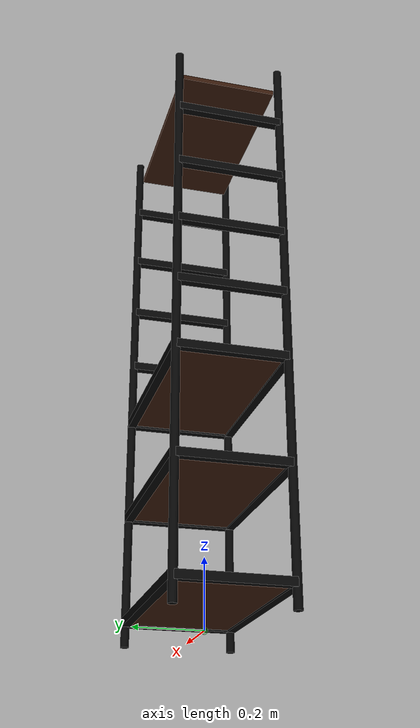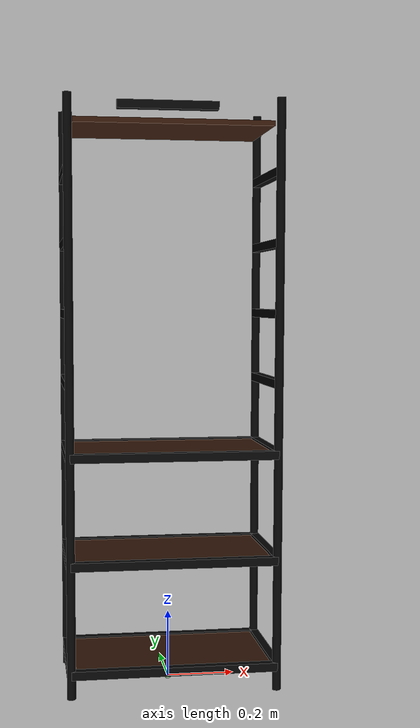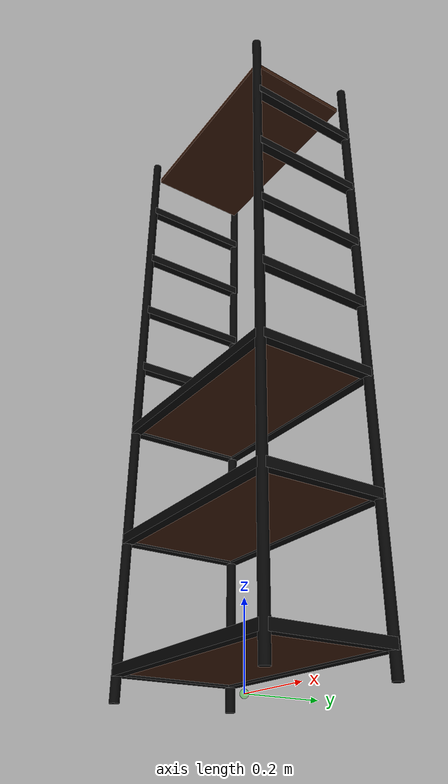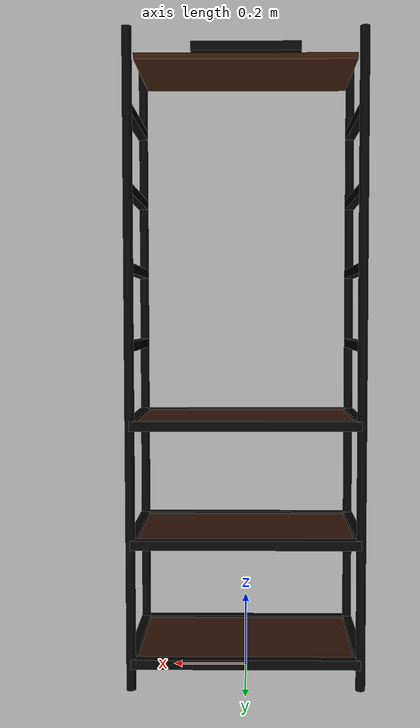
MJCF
<mujoco model="obstacle_shelf">
  <default>
    <default class="visual">
      <geom group="1" type="box" contype="0" conaffinity="0" density="100"/>
    </default>
    <default class="collision">
      <geom group="0" type="box" density="100" solimp="0.95 0.98 0.001" solref="0.004 1" rgba="1 1 1 0.25"/>
    </default>
    <default class="spawn">
      <geom group="1" rgba="1 1 1 0" contype="0" conaffinity="0" density="0" mass="0"/>
    </default>
  </default>
  <asset>
    <texture name="black_metal_tex" builtin="flat" rgb1="0.12 0.12 0.12" rgb2="0.12 0.12 0.12" width="32" height="32"/>
    <material name="black_metal_mat" texture="black_metal_tex" shininess="0.4" reflectance="0.15" rgba="0.12 0.12 0.12 1"/>
    <texture name="brown_wood_tex" builtin="flat" rgb1="0.45 0.30 0.18" rgb2="0.50 0.33 0.20" width="32" height="32"/>
    <material name="brown_wood_mat" texture="brown_wood_tex" shininess="0.15" reflectance="0.05" rgba="0.45 0.30 0.18 1"/>
  </asset>
  <worldbody>
    <body>
      <body name="object">
        <!-- === 4 CORNER POLES (black metal, 2.5cm dia, full height 170.5cm) === -->
        <!-- Poles at ±30cm x, ±16cm y (slightly wider than shelf boards) -->
        <geom class="collision" name="pole_fl" type="cylinder" size="0.0125 0.8525" pos="-0.30 0.16 0.8525" material="black_metal_mat"/>
        <geom class="visual" name="pole_fl_vis" type="cylinder" size="0.0125 0.8525" pos="-0.30 0.16 0.8525" material="black_metal_mat"/>
        <geom class="collision" name="pole_fr" type="cylinder" size="0.0125 0.8525" pos="0.30 0.16 0.8525" material="black_metal_mat"/>
        <geom class="visual" name="pole_fr_vis" type="cylinder" size="0.0125 0.8525" pos="0.30 0.16 0.8525" material="black_metal_mat"/>
        <geom class="collision" name="pole_bl" type="cylinder" size="0.0125 0.8525" pos="-0.30 -0.16 0.8525" material="black_metal_mat"/>
        <geom class="visual" name="pole_bl_vis" type="cylinder" size="0.0125 0.8525" pos="-0.30 -0.16 0.8525" material="black_metal_mat"/>
        <geom class="collision" name="pole_br" type="cylinder" size="0.0125 0.8525" pos="0.30 -0.16 0.8525" material="black_metal_mat"/>
        <geom class="visual" name="pole_br_vis" type="cylinder" size="0.0125 0.8525" pos="0.30 -0.16 0.8525" material="black_metal_mat"/>

        <!-- === 4 BROWN WOODEN SHELF BOARDS (57cm x 30cm x 1.5cm) === -->
        <!-- Shelf 1 at z=7cm -->
        <geom class="collision" name="shelf_1" size="0.285 0.15 0.0075" pos="0 0 0.07" material="brown_wood_mat"/>
        <geom class="visual" name="shelf_1_vis" size="0.285 0.15 0.0075" pos="0 0 0.07" material="brown_wood_mat"/>
        <!-- Shelf 2 at z=38.5cm -->
        <geom class="collision" name="shelf_2" size="0.285 0.15 0.0075" pos="0 0 0.385" material="brown_wood_mat"/>
        <geom class="visual" name="shelf_2_vis" size="0.285 0.15 0.0075" pos="0 0 0.385" material="brown_wood_mat"/>
        <!-- Shelf 3 at z=69.5cm -->
        <geom class="collision" name="shelf_3" size="0.285 0.15 0.0075" pos="0 0 0.695" material="brown_wood_mat"/>
        <geom class="visual" name="shelf_3_vis" size="0.285 0.15 0.0075" pos="0 0 0.695" material="brown_wood_mat"/>
        <!-- Shelf 4 (top crossbar level) at z=163.5cm — just a bar, no board -->

        <!-- === HORIZONTAL RAILS at each shelf level (black metal, connecting poles) === -->
        <!-- Front rails (x-direction, at front y=0.16) -->
        <geom class="visual" name="rail_f_1" size="0.30 0.0125 0.0125" pos="0 0.16 0.07" material="black_metal_mat"/>
        <geom class="visual" name="rail_f_2" size="0.30 0.0125 0.0125" pos="0 0.16 0.385" material="black_metal_mat"/>
        <geom class="visual" name="rail_f_3" size="0.30 0.0125 0.0125" pos="0 0.16 0.695" material="black_metal_mat"/>
        <!-- Back rails -->
        <geom class="visual" name="rail_b_1" size="0.30 0.0125 0.0125" pos="0 -0.16 0.07" material="black_metal_mat"/>
        <geom class="visual" name="rail_b_2" size="0.30 0.0125 0.0125" pos="0 -0.16 0.385" material="black_metal_mat"/>
        <geom class="visual" name="rail_b_3" size="0.30 0.0125 0.0125" pos="0 -0.16 0.695" material="black_metal_mat"/>
        <!-- Left side rails (y-direction, at left x=-0.30) -->
        <geom class="visual" name="rail_l_1" size="0.0125 0.16 0.0125" pos="-0.30 0 0.07" material="black_metal_mat"/>
        <geom class="visual" name="rail_l_2" size="0.0125 0.16 0.0125" pos="-0.30 0 0.385" material="black_metal_mat"/>
        <geom class="visual" name="rail_l_3" size="0.0125 0.16 0.0125" pos="-0.30 0 0.695" material="black_metal_mat"/>
        <!-- Right side rails -->
        <geom class="visual" name="rail_r_1" size="0.0125 0.16 0.0125" pos="0.30 0 0.07" material="black_metal_mat"/>
        <geom class="visual" name="rail_r_2" size="0.0125 0.16 0.0125" pos="0.30 0 0.385" material="black_metal_mat"/>
        <geom class="visual" name="rail_r_3" size="0.0125 0.16 0.0125" pos="0.30 0 0.695" material="black_metal_mat"/>

        <!-- === UPPER LADDER SECTION cross-bars (between shelf 3 at 69.5cm and 163.5cm) === -->
        <!-- Left side horizontal rungs -->
        <geom class="collision" name="xbar_l_1" size="0.0125 0.16 0.0125" pos="-0.30 0 0.90" material="black_metal_mat"/>
        <geom class="visual" name="xbar_l_1_vis" size="0.0125 0.16 0.0125" pos="-0.30 0 0.90" material="black_metal_mat"/>
        <geom class="collision" name="xbar_l_2" size="0.0125 0.16 0.0125" pos="-0.30 0 1.10" material="black_metal_mat"/>
        <geom class="visual" name="xbar_l_2_vis" size="0.0125 0.16 0.0125" pos="-0.30 0 1.10" material="black_metal_mat"/>
        <geom class="collision" name="xbar_l_3" size="0.0125 0.16 0.0125" pos="-0.30 0 1.30" material="black_metal_mat"/>
        <geom class="visual" name="xbar_l_3_vis" size="0.0125 0.16 0.0125" pos="-0.30 0 1.30" material="black_metal_mat"/>
        <geom class="collision" name="xbar_l_4" size="0.0125 0.16 0.0125" pos="-0.30 0 1.50" material="black_metal_mat"/>
        <geom class="visual" name="xbar_l_4_vis" size="0.0125 0.16 0.0125" pos="-0.30 0 1.50" material="black_metal_mat"/>
        <!-- Right side horizontal rungs -->
        <geom class="collision" name="xbar_r_1" size="0.0125 0.16 0.0125" pos="0.30 0 0.90" material="black_metal_mat"/>
        <geom class="visual" name="xbar_r_1_vis" size="0.0125 0.16 0.0125" pos="0.30 0 0.90" material="black_metal_mat"/>
        <geom class="collision" name="xbar_r_2" size="0.0125 0.16 0.0125" pos="0.30 0 1.10" material="black_metal_mat"/>
        <geom class="visual" name="xbar_r_2_vis" size="0.0125 0.16 0.0125" pos="0.30 0 1.10" material="black_metal_mat"/>
        <geom class="collision" name="xbar_r_3" size="0.0125 0.16 0.0125" pos="0.30 0 1.30" material="black_metal_mat"/>
        <geom class="visual" name="xbar_r_3_vis" size="0.0125 0.16 0.0125" pos="0.30 0 1.30" material="black_metal_mat"/>
        <geom class="collision" name="xbar_r_4" size="0.0125 0.16 0.0125" pos="0.30 0 1.50" material="black_metal_mat"/>
        <geom class="visual" name="xbar_r_4_vis" size="0.0125 0.16 0.0125" pos="0.30 0 1.50" material="black_metal_mat"/>

        <!-- === SHELF 4 at z=163.5cm (brown wooden board, same as others) === -->
        <geom class="collision" name="shelf_4" size="0.285 0.15 0.0075" pos="0 0 1.635" material="brown_wood_mat"/>
        <geom class="visual" name="shelf_4_vis" size="0.285 0.15 0.0075" pos="0 0 1.635" material="brown_wood_mat"/>
        <geom class="collision" name="top_bar" size="0.15 0.0125 0.0125" pos="0 0 1.705" material="black_metal_mat"/>
        <geom class="visual" name="top_bar_vis" size="0.15 0.0125 0.0125" pos="0 0 1.705" material="black_metal_mat"/>

        <!-- Spawn zones (between shelves) -->
        <geom class="spawn" name="spawn_1" type="box" size="0.25 0.13 0.12" pos="0 0 0.225"/>
        <geom class="spawn" name="spawn_2" type="box" size="0.25 0.13 0.12" pos="0 0 0.54"/>
      </body>
      <site name="top_site" pos="0 0 1.705" size="0.01 0.01 0.01" rgba="1 0 0 0.3"/>
      <site name="bottom_site" pos="0 0 0" size="0.01 0.01 0.01" rgba="0 1 0 0.3"/>
      <site name="horizontal_radius_site" pos="0.30 0.16 0.8525" size="0.01 0.01 0.01" rgba="0 0 1 0.3"/>
    </body>
  </worldbody>
</mujoco>
